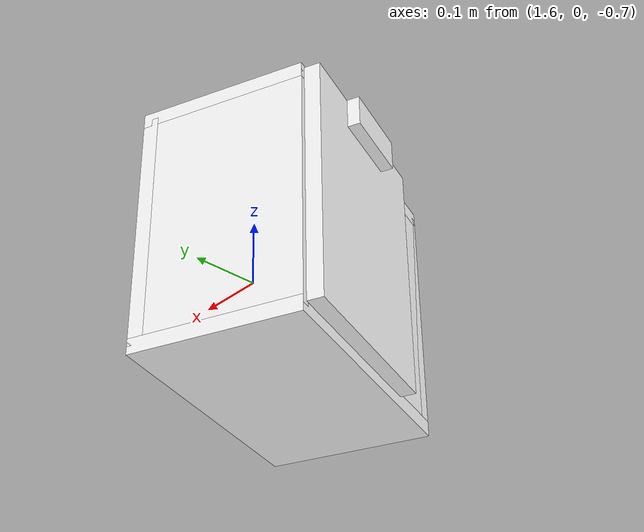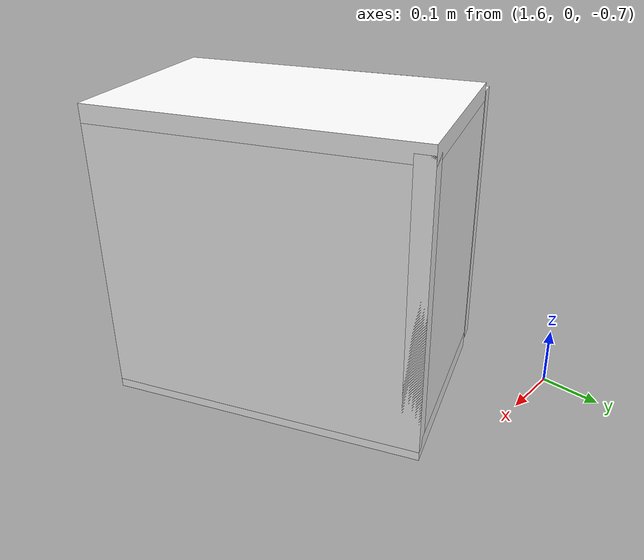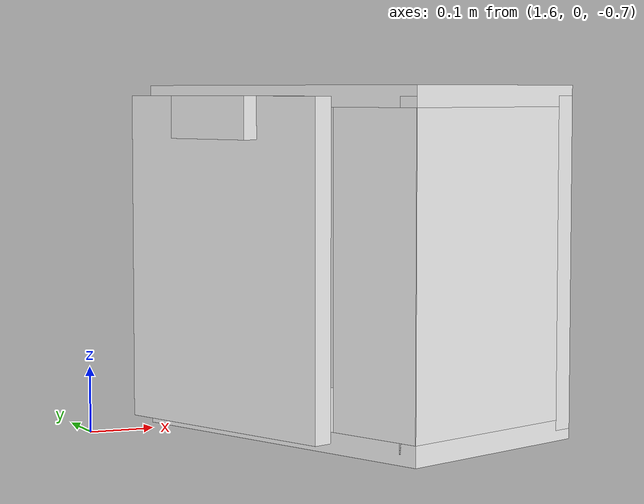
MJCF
<mujoco model="cabinet">
    <compiler angle="radian" eulerseq='zxy' />
    <option gravity = "0 0 0" />
    <option>
        <flag contact = "disable"/>
    </option>
    <statistic	extent="1.0" center="0.0 0.0 0.0"/>
    <visual>
        <map fogstart="3" fogend="5" force="0.1" znear=" 0.100000 " zfar=" 12.000000 "/>
    </visual>
    <size njmax="500" nconmax="100" />
    <actuator>
        <velocity joint="bottom_left_hinge" name="viva_revolution" kv='10'></velocity>
    </actuator>
    <asset>
        <texture builtin="flat" name="tabletex" height="32" width="32" rgb1="1 1 1" type="cube"></texture>
        <texture builtin="flat" name="objtex" height="32" width="32" rgb1="1 1 1" type="cube"></texture>
        <texture builtin="flat" name="handletex" height="32" width="32" rgb1="1 1 1" type="cube"></texture>
        <texture builtin="flat" name="wallpaper" height="32" width="32" rgb1="1 1 1" type="cube"></texture>
        <texture builtin="flat" name="kp" height="32" width="32" rgb1="1 1 1" type="cube"></texture>
        <material name="geomTable" shininess="0.03" specular="0.75" texture="tabletex"></material>
        <material name="geomObj" shininess="0.03" specular="0.75" texture="objtex"></material>
        <material name="geomHandle" shininess="0.03" specular="0.75" texture="handletex"></material>
        <material name="bg" shininess="0.03" specular="0.75" texture="wallpaper"></material>
        <material name="geomKeypad" shininess="0.03" specular="0.75" texture="kp"></material>
    </asset>
    <worldbody>
        <body name="cabinet_bottom" pos= " 1.891663 -0.325382 -0.651850 "  quat= " -0.183276 0.000000 0.000000 0.983061" >
            <inertial pos="0 0 0" mass="1" diaginertia="1 1 1" />
            <geom size= " 0.158511 0.258893 0.014573 "  type="box" material="geomObj" name="b"/>
            <body name="cabinet_left" pos= " 0.000000 -0.244319 0.230448 " >
                <inertial pos="0 0 0" mass="1" diaginertia="1 1 1" />
                <geom size= " 0.158511 0.014573 0.230448 "  type="box" material="geomObj" name="c" />
            </body>
            <body name="cabinet_right" pos= " 0.000000 0.244319 0.230448 " >
                <inertial pos="0 0 0" mass="1" diaginertia="1 1 1" />
                <geom size= " 0.158511 0.014573 0.230448 "  type="box" material="geomObj" name="d" />
            </body>
            <body name="cabinet_top" pos= " 0.000000 0.000000 0.460895 " >
                <inertial pos="0 0 0" mass="1" diaginertia="1 1 1" />
                <geom size= " 0.158511 0.258893 0.014573 "  type="box" material="geomObj" name="e"/>
            </body>
            <body name="cabinet_back" pos= " -0.143938 0.000000 0.230448 "  >
                <inertial pos="0 0 0" mass="1" diaginertia="1 1 1" />
                <geom size= " 0.014573 0.258893 0.230448 "  type="box" material="geomObj" name="f" />
            </body>
            <body name="cabinet_keypad" pos= " 0.014573 0.184237 0.230448 " >
                <inertial pos="0 0 0" mass="1" diaginertia="1 1 1" />
                <geom size= " 0.143938 0.073656 0.215874 "  type="box" material="geomKeypad" name="keypizzlemynizzle" />
            </body>
            <body name="cabinet_left_hinge" pos= " 0.158511 -0.073656 0.000000 " >
                <inertial pos= " 0.020000 0.000000 0.230448 "  mass="1" diaginertia="1 1 1" />
                <joint name="bottom_left_hinge" type="hinge" pos="0 0 0" axis="0 1 0" limited="true" range= "0 2.3"  />
                <geom size= " 0.014573 0.185237 0.230448 "  pos= " 0.020000 0.000000 0.230448 "  type="box" material="geomObj" name="g"/>
                <body name="handle_link" pos= " 0.039628 0.000000 0.431749 " >
                    <inertial pos="0 0 0" mass="1" diaginertia="1 1 1" />
                    <geom size= " 0.018127 0.073656 0.029536 "  type="box" material="geomHandle" name="h"/>
                </body>
            </body>
        </body>
        <body name="external_camera_body_0" pos="0.0 0 0.00">
            <camera euler="-1.57 1.57 0.0" fovy=" 54.280851 " name="external_camera_0" pos="0.0 0 0"></camera>
            <inertial pos= " 0.00 0.0 0.000000 " mass="1" diaginertia="1 1 1" />
            <joint name="cam_j" pos="0.0 0 0" axis = "1 0 0" type="free" />
        </body>
    </worldbody>
</mujoco>
